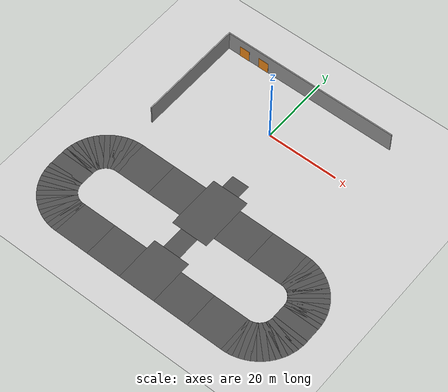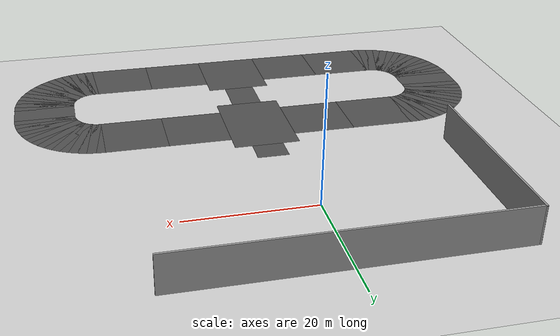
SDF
<sdf version="1.6">
 <world name="default">
  <include><uri>model://ground_plane</uri></include>
  <include><uri>model://sun</uri></include>
  <model name="wall_n">
   <static>true</static>
   <pose>0.0000 15.1500 3.0000 0.000000 0.000000 0.000000</pose>
   <link name="link">
    <collision name="c"><geometry><box><size>50.6000 0.3000 6.0000</size></box></geometry></collision>
    <visual name="v">
     <geometry><box><size>50.6000 0.3000 6.0000</size></box></geometry>
     <material>
      <script><uri>file://media/materials/scripts/gazebo.material</uri><name>Gazebo/Grey</name></script>
     </material>
    </visual>
   </link>
  </model>
  <model name="wall_w">
   <static>true</static>
   <pose>-25.1500 0.0000 3.0000 0.000000 0.000000 0.000000</pose>
   <link name="link">
    <collision name="c"><geometry><box><size>0.3000 30.6000 6.0000</size></box></geometry></collision>
    <visual name="v">
     <geometry><box><size>0.3000 30.6000 6.0000</size></box></geometry>
     <material>
      <script><uri>file://media/materials/scripts/gazebo.material</uri><name>Gazebo/Grey</name></script>
     </material>
    </visual>
   </link>
  </model>
  <model name="door_R1">
   <static>true</static>
   <pose>-20.0000 14.9700 1.7500 0.000000 0.000000 0.000000</pose>
   <link name="link">
    <visual name="v">
     <geometry><box><size>3.0000 0.0500 3.5000</size></box></geometry>
     <material>
      <script><uri>file://media/materials/scripts/gazebo.material</uri><name>Gazebo/Orange</name></script>
     </material>
    </visual>
   </link>
  </model>
  <model name="door_R2">
   <static>true</static>
   <pose>-14.0000 14.9700 1.7500 0.000000 0.000000 0.000000</pose>
   <link name="link">
    <visual name="v">
     <geometry><box><size>3.0000 0.0500 3.5000</size></box></geometry>
     <material>
      <script><uri>file://media/materials/scripts/gazebo.material</uri><name>Gazebo/Orange</name></script>
     </material>
    </visual>
   </link>
  </model>
  <model name="road_surface">
   <static>true</static>
   <link name="link">
    <visual name="v0">
     <pose>-17.2500 -27.0000 0.0010 0 0 0.000000</pose>
     <geometry><box><size>10.0000 10.0000 0.0020</size></box></geometry>
     <material>
      <script><uri>file://media/materials/scripts/gazebo.material</uri><name>Gazebo/DarkGrey</name></script>
     </material>
    </visual>
    <visual name="v1">
     <pose>-7.2500 -27.0000 0.0010 0 0 0.000000</pose>
     <geometry><box><size>10.0000 10.0000 0.0020</size></box></geometry>
     <material>
      <script><uri>file://media/materials/scripts/gazebo.material</uri><name>Gazebo/DarkGrey</name></script>
     </material>
    </visual>
    <visual name="v2">
     <pose>13.2500 -27.0000 0.0010 0 0 0.000000</pose>
     <geometry><box><size>10.0000 10.0000 0.0020</size></box></geometry>
     <material>
      <script><uri>file://media/materials/scripts/gazebo.material</uri><name>Gazebo/DarkGrey</name></script>
     </material>
    </visual>
    <visual name="v3">
     <pose>23.2500 -27.0000 0.0010 0 0 0.000000</pose>
     <geometry><box><size>10.0000 10.0000 0.0020</size></box></geometry>
     <material>
      <script><uri>file://media/materials/scripts/gazebo.material</uri><name>Gazebo/DarkGrey</name></script>
     </material>
    </visual>
    <visual name="v4">
     <pose>28.7210 -27.0123 0.0010 0 0 -0.052360</pose>
     <geometry><box><size>1.4674 10.0000 0.0020</size></box></geometry>
     <material>
      <script><uri>file://media/materials/scripts/gazebo.material</uri><name>Gazebo/DarkGrey</name></script>
     </material>
    </visual>
    <visual name="v5">
     <pose>29.6579 -27.1108 0.0010 0 0 -0.157080</pose>
     <geometry><box><size>1.4674 10.0000 0.0020</size></box></geometry>
     <material>
      <script><uri>file://media/materials/scripts/gazebo.material</uri><name>Gazebo/DarkGrey</name></script>
     </material>
    </visual>
    <visual name="v6">
     <pose>30.5794 -27.3067 0.0010 0 0 -0.261799</pose>
     <geometry><box><size>1.4674 10.0000 0.0020</size></box></geometry>
     <material>
      <script><uri>file://media/materials/scripts/gazebo.material</uri><name>Gazebo/DarkGrey</name></script>
     </material>
    </visual>
    <visual name="v7">
     <pose>31.4753 -27.5978 0.0010 0 0 -0.366519</pose>
     <geometry><box><size>1.4674 10.0000 0.0020</size></box></geometry>
     <material>
      <script><uri>file://media/materials/scripts/gazebo.material</uri><name>Gazebo/DarkGrey</name></script>
     </material>
    </visual>
    <visual name="v8">
     <pose>32.3359 -27.9809 0.0010 0 0 -0.471239</pose>
     <geometry><box><size>1.4674 10.0000 0.0020</size></box></geometry>
     <material>
      <script><uri>file://media/materials/scripts/gazebo.material</uri><name>Gazebo/DarkGrey</name></script>
     </material>
    </visual>
    <visual name="v9">
     <pose>33.1518 -28.4520 0.0010 0 0 -0.575959</pose>
     <geometry><box><size>1.4674 10.0000 0.0020</size></box></geometry>
     <material>
      <script><uri>file://media/materials/scripts/gazebo.material</uri><name>Gazebo/DarkGrey</name></script>
     </material>
    </visual>
    <visual name="v10">
     <pose>33.9139 -29.0057 0.0010 0 0 -0.680678</pose>
     <geometry><box><size>1.4674 10.0000 0.0020</size></box></geometry>
     <material>
      <script><uri>file://media/materials/scripts/gazebo.material</uri><name>Gazebo/DarkGrey</name></script>
     </material>
    </visual>
    <visual name="v11">
     <pose>34.6140 -29.6360 0.0010 0 0 -0.785398</pose>
     <geometry><box><size>1.4674 10.0000 0.0020</size></box></geometry>
     <material>
      <script><uri>file://media/materials/scripts/gazebo.material</uri><name>Gazebo/DarkGrey</name></script>
     </material>
    </visual>
    <visual name="v12">
     <pose>35.2443 -30.3361 0.0010 0 0 -0.890118</pose>
     <geometry><box><size>1.4674 10.0000 0.0020</size></box></geometry>
     <material>
      <script><uri>file://media/materials/scripts/gazebo.material</uri><name>Gazebo/DarkGrey</name></script>
     </material>
    </visual>
    <visual name="v13">
     <pose>35.7980 -31.0982 0.0010 0 0 -0.994838</pose>
     <geometry><box><size>1.4674 10.0000 0.0020</size></box></geometry>
     <material>
      <script><uri>file://media/materials/scripts/gazebo.material</uri><name>Gazebo/DarkGrey</name></script>
     </material>
    </visual>
    <visual name="v14">
     <pose>36.2691 -31.9141 0.0010 0 0 -1.099557</pose>
     <geometry><box><size>1.4674 10.0000 0.0020</size></box></geometry>
     <material>
      <script><uri>file://media/materials/scripts/gazebo.material</uri><name>Gazebo/DarkGrey</name></script>
     </material>
    </visual>
    <visual name="v15">
     <pose>36.6522 -32.7747 0.0010 0 0 -1.204277</pose>
     <geometry><box><size>1.4674 10.0000 0.0020</size></box></geometry>
     <material>
      <script><uri>file://media/materials/scripts/gazebo.material</uri><name>Gazebo/DarkGrey</name></script>
     </material>
    </visual>
    <visual name="v16">
     <pose>36.9433 -33.6706 0.0010 0 0 -1.308997</pose>
     <geometry><box><size>1.4674 10.0000 0.0020</size></box></geometry>
     <material>
      <script><uri>file://media/materials/scripts/gazebo.material</uri><name>Gazebo/DarkGrey</name></script>
     </material>
    </visual>
    <visual name="v17">
     <pose>37.1392 -34.5921 0.0010 0 0 -1.413717</pose>
     <geometry><box><size>1.4674 10.0000 0.0020</size></box></geometry>
     <material>
      <script><uri>file://media/materials/scripts/gazebo.material</uri><name>Gazebo/DarkGrey</name></script>
     </material>
    </visual>
    <visual name="v18">
     <pose>37.2377 -35.5290 0.0010 0 0 -1.518436</pose>
     <geometry><box><size>1.4674 10.0000 0.0020</size></box></geometry>
     <material>
      <script><uri>file://media/materials/scripts/gazebo.material</uri><name>Gazebo/DarkGrey</name></script>
     </material>
    </visual>
    <visual name="v19">
     <pose>37.2500 -38.0000 0.0010 0 0 -1.570796</pose>
     <geometry><box><size>4.0000 10.0000 0.0020</size></box></geometry>
     <material>
      <script><uri>file://media/materials/scripts/gazebo.material</uri><name>Gazebo/DarkGrey</name></script>
     </material>
    </visual>
    <visual name="v20">
     <pose>37.2377 -40.4710 0.0010 0 0 -1.623156</pose>
     <geometry><box><size>1.4674 10.0000 0.0020</size></box></geometry>
     <material>
      <script><uri>file://media/materials/scripts/gazebo.material</uri><name>Gazebo/DarkGrey</name></script>
     </material>
    </visual>
    <visual name="v21">
     <pose>37.1392 -41.4079 0.0010 0 0 -1.727876</pose>
     <geometry><box><size>1.4674 10.0000 0.0020</size></box></geometry>
     <material>
      <script><uri>file://media/materials/scripts/gazebo.material</uri><name>Gazebo/DarkGrey</name></script>
     </material>
    </visual>
    <visual name="v22">
     <pose>36.9433 -42.3294 0.0010 0 0 -1.832596</pose>
     <geometry><box><size>1.4674 10.0000 0.0020</size></box></geometry>
     <material>
      <script><uri>file://media/materials/scripts/gazebo.material</uri><name>Gazebo/DarkGrey</name></script>
     </material>
    </visual>
    <visual name="v23">
     <pose>36.6522 -43.2253 0.0010 0 0 -1.937315</pose>
     <geometry><box><size>1.4674 10.0000 0.0020</size></box></geometry>
     <material>
      <script><uri>file://media/materials/scripts/gazebo.material</uri><name>Gazebo/DarkGrey</name></script>
     </material>
    </visual>
    <visual name="v24">
     <pose>36.2691 -44.0859 0.0010 0 0 -2.042035</pose>
     <geometry><box><size>1.4674 10.0000 0.0020</size></box></geometry>
     <material>
      <script><uri>file://media/materials/scripts/gazebo.material</uri><name>Gazebo/DarkGrey</name></script>
     </material>
    </visual>
    <visual name="v25">
     <pose>35.7980 -44.9018 0.0010 0 0 -2.146755</pose>
     <geometry><box><size>1.4674 10.0000 0.0020</size></box></geometry>
     <material>
      <script><uri>file://media/materials/scripts/gazebo.material</uri><name>Gazebo/DarkGrey</name></script>
     </material>
    </visual>
    <visual name="v26">
     <pose>35.2443 -45.6639 0.0010 0 0 -2.251475</pose>
     <geometry><box><size>1.4674 10.0000 0.0020</size></box></geometry>
     <material>
      <script><uri>file://media/materials/scripts/gazebo.material</uri><name>Gazebo/DarkGrey</name></script>
     </material>
    </visual>
    <visual name="v27">
     <pose>34.6140 -46.3640 0.0010 0 0 -2.356194</pose>
     <geometry><box><size>1.4674 10.0000 0.0020</size></box></geometry>
     <material>
      <script><uri>file://media/materials/scripts/gazebo.material</uri><name>Gazebo/DarkGrey</name></script>
     </material>
    </visual>
    <visual name="v28">
     <pose>33.9139 -46.9943 0.0010 0 0 -2.460914</pose>
     <geometry><box><size>1.4674 10.0000 0.0020</size></box></geometry>
     <material>
      <script><uri>file://media/materials/scripts/gazebo.material</uri><name>Gazebo/DarkGrey</name></script>
     </material>
    </visual>
    <visual name="v29">
     <pose>33.1518 -47.5480 0.0010 0 0 -2.565634</pose>
     <geometry><box><size>1.4674 10.0000 0.0020</size></box></geometry>
     <material>
      <script><uri>file://media/materials/scripts/gazebo.material</uri><name>Gazebo/DarkGrey</name></script>
     </material>
    </visual>
    <visual name="v30">
     <pose>32.3359 -48.0191 0.0010 0 0 -2.670354</pose>
     <geometry><box><size>1.4674 10.0000 0.0020</size></box></geometry>
     <material>
      <script><uri>file://media/materials/scripts/gazebo.material</uri><name>Gazebo/DarkGrey</name></script>
     </material>
    </visual>
    <visual name="v31">
     <pose>31.4753 -48.4022 0.0010 0 0 -2.775074</pose>
     <geometry><box><size>1.4674 10.0000 0.0020</size></box></geometry>
     <material>
      <script><uri>file://media/materials/scripts/gazebo.material</uri><name>Gazebo/DarkGrey</name></script>
     </material>
    </visual>
    <visual name="v32">
     <pose>30.5794 -48.6933 0.0010 0 0 -2.879793</pose>
     <geometry><box><size>1.4674 10.0000 0.0020</size></box></geometry>
     <material>
      <script><uri>file://media/materials/scripts/gazebo.material</uri><name>Gazebo/DarkGrey</name></script>
     </material>
    </visual>
    <visual name="v33">
     <pose>29.6579 -48.8892 0.0010 0 0 -2.984513</pose>
     <geometry><box><size>1.4674 10.0000 0.0020</size></box></geometry>
     <material>
      <script><uri>file://media/materials/scripts/gazebo.material</uri><name>Gazebo/DarkGrey</name></script>
     </material>
    </visual>
    <visual name="v34">
     <pose>28.7210 -48.9877 0.0010 0 0 -3.089233</pose>
     <geometry><box><size>1.4674 10.0000 0.0020</size></box></geometry>
     <material>
      <script><uri>file://media/materials/scripts/gazebo.material</uri><name>Gazebo/DarkGrey</name></script>
     </material>
    </visual>
    <visual name="v35">
     <pose>23.2500 -49.0000 0.0010 0 0 3.141593</pose>
     <geometry><box><size>10.0000 10.0000 0.0020</size></box></geometry>
     <material>
      <script><uri>file://media/materials/scripts/gazebo.material</uri><name>Gazebo/DarkGrey</name></script>
     </material>
    </visual>
    <visual name="v36">
     <pose>13.2500 -49.0000 0.0010 0 0 3.141593</pose>
     <geometry><box><size>10.0000 10.0000 0.0020</size></box></geometry>
     <material>
      <script><uri>file://media/materials/scripts/gazebo.material</uri><name>Gazebo/DarkGrey</name></script>
     </material>
    </visual>
    <visual name="v37">
     <pose>-7.2500 -49.0000 0.0010 0 0 3.141593</pose>
     <geometry><box><size>10.0000 10.0000 0.0020</size></box></geometry>
     <material>
      <script><uri>file://media/materials/scripts/gazebo.material</uri><name>Gazebo/DarkGrey</name></script>
     </material>
    </visual>
    <visual name="v38">
     <pose>-17.2500 -49.0000 0.0010 0 0 3.141593</pose>
     <geometry><box><size>10.0000 10.0000 0.0020</size></box></geometry>
     <material>
      <script><uri>file://media/materials/scripts/gazebo.material</uri><name>Gazebo/DarkGrey</name></script>
     </material>
    </visual>
    <visual name="v39">
     <pose>-22.7210 -48.9877 0.0010 0 0 -3.193953</pose>
     <geometry><box><size>1.4674 10.0000 0.0020</size></box></geometry>
     <material>
      <script><uri>file://media/materials/scripts/gazebo.material</uri><name>Gazebo/DarkGrey</name></script>
     </material>
    </visual>
    <visual name="v40">
     <pose>-23.6579 -48.8892 0.0010 0 0 -3.298672</pose>
     <geometry><box><size>1.4674 10.0000 0.0020</size></box></geometry>
     <material>
      <script><uri>file://media/materials/scripts/gazebo.material</uri><name>Gazebo/DarkGrey</name></script>
     </material>
    </visual>
    <visual name="v41">
     <pose>-24.5794 -48.6933 0.0010 0 0 -3.403392</pose>
     <geometry><box><size>1.4674 10.0000 0.0020</size></box></geometry>
     <material>
      <script><uri>file://media/materials/scripts/gazebo.material</uri><name>Gazebo/DarkGrey</name></script>
     </material>
    </visual>
    <visual name="v42">
     <pose>-25.4753 -48.4022 0.0010 0 0 -3.508112</pose>
     <geometry><box><size>1.4674 10.0000 0.0020</size></box></geometry>
     <material>
      <script><uri>file://media/materials/scripts/gazebo.material</uri><name>Gazebo/DarkGrey</name></script>
     </material>
    </visual>
    <visual name="v43">
     <pose>-26.3359 -48.0191 0.0010 0 0 -3.612832</pose>
     <geometry><box><size>1.4674 10.0000 0.0020</size></box></geometry>
     <material>
      <script><uri>file://media/materials/scripts/gazebo.material</uri><name>Gazebo/DarkGrey</name></script>
     </material>
    </visual>
    <visual name="v44">
     <pose>-27.1518 -47.5480 0.0010 0 0 -3.717551</pose>
     <geometry><box><size>1.4674 10.0000 0.0020</size></box></geometry>
     <material>
      <script><uri>file://media/materials/scripts/gazebo.material</uri><name>Gazebo/DarkGrey</name></script>
     </material>
    </visual>
    <visual name="v45">
     <pose>-27.9139 -46.9943 0.0010 0 0 -3.822271</pose>
     <geometry><box><size>1.4674 10.0000 0.0020</size></box></geometry>
     <material>
      <script><uri>file://media/materials/scripts/gazebo.material</uri><name>Gazebo/DarkGrey</name></script>
     </material>
    </visual>
    <visual name="v46">
     <pose>-28.6140 -46.3640 0.0010 0 0 -3.926991</pose>
     <geometry><box><size>1.4674 10.0000 0.0020</size></box></geometry>
     <material>
      <script><uri>file://media/materials/scripts/gazebo.material</uri><name>Gazebo/DarkGrey</name></script>
     </material>
    </visual>
    <visual name="v47">
     <pose>-29.2443 -45.6639 0.0010 0 0 -4.031711</pose>
     <geometry><box><size>1.4674 10.0000 0.0020</size></box></geometry>
     <material>
      <script><uri>file://media/materials/scripts/gazebo.material</uri><name>Gazebo/DarkGrey</name></script>
     </material>
    </visual>
    <visual name="v48">
     <pose>-29.7980 -44.9018 0.0010 0 0 -4.136430</pose>
     <geometry><box><size>1.4674 10.0000 0.0020</size></box></geometry>
     <material>
      <script><uri>file://media/materials/scripts/gazebo.material</uri><name>Gazebo/DarkGrey</name></script>
     </material>
    </visual>
    <visual name="v49">
     <pose>-30.2691 -44.0859 0.0010 0 0 -4.241150</pose>
     <geometry><box><size>1.4674 10.0000 0.0020</size></box></geometry>
     <material>
      <script><uri>file://media/materials/scripts/gazebo.material</uri><name>Gazebo/DarkGrey</name></script>
     </material>
    </visual>
    <visual name="v50">
     <pose>-30.6522 -43.2253 0.0010 0 0 -4.345870</pose>
     <geometry><box><size>1.4674 10.0000 0.0020</size></box></geometry>
     <material>
      <script><uri>file://media/materials/scripts/gazebo.material</uri><name>Gazebo/DarkGrey</name></script>
     </material>
    </visual>
    <visual name="v51">
     <pose>-30.9433 -42.3294 0.0010 0 0 -4.450590</pose>
     <geometry><box><size>1.4674 10.0000 0.0020</size></box></geometry>
     <material>
      <script><uri>file://media/materials/scripts/gazebo.material</uri><name>Gazebo/DarkGrey</name></script>
     </material>
    </visual>
    <visual name="v52">
     <pose>-31.1392 -41.4079 0.0010 0 0 -4.555309</pose>
     <geometry><box><size>1.4674 10.0000 0.0020</size></box></geometry>
     <material>
      <script><uri>file://media/materials/scripts/gazebo.material</uri><name>Gazebo/DarkGrey</name></script>
     </material>
    </visual>
    <visual name="v53">
     <pose>-31.2377 -40.4710 0.0010 0 0 -4.660029</pose>
     <geometry><box><size>1.4674 10.0000 0.0020</size></box></geometry>
     <material>
      <script><uri>file://media/materials/scripts/gazebo.material</uri><name>Gazebo/DarkGrey</name></script>
     </material>
    </visual>
    <visual name="v54">
     <pose>-31.2500 -38.0000 0.0010 0 0 1.570796</pose>
     <geometry><box><size>4.0000 10.0000 0.0020</size></box></geometry>
     <material>
      <script><uri>file://media/materials/scripts/gazebo.material</uri><name>Gazebo/DarkGrey</name></script>
     </material>
    </visual>
    <visual name="v55">
     <pose>-31.2377 -35.5290 0.0010 0 0 1.518436</pose>
     <geometry><box><size>1.4674 10.0000 0.0020</size></box></geometry>
     <material>
      <script><uri>file://media/materials/scripts/gazebo.material</uri><name>Gazebo/DarkGrey</name></script>
     </material>
    </visual>
    <visual name="v56">
     <pose>-31.1392 -34.5921 0.0010 0 0 1.413717</pose>
     <geometry><box><size>1.4674 10.0000 0.0020</size></box></geometry>
     <material>
      <script><uri>file://media/materials/scripts/gazebo.material</uri><name>Gazebo/DarkGrey</name></script>
     </material>
    </visual>
    <visual name="v57">
     <pose>-30.9433 -33.6706 0.0010 0 0 1.308997</pose>
     <geometry><box><size>1.4674 10.0000 0.0020</size></box></geometry>
     <material>
      <script><uri>file://media/materials/scripts/gazebo.material</uri><name>Gazebo/DarkGrey</name></script>
     </material>
    </visual>
    <visual name="v58">
     <pose>-30.6522 -32.7747 0.0010 0 0 1.204277</pose>
     <geometry><box><size>1.4674 10.0000 0.0020</size></box></geometry>
     <material>
      <script><uri>file://media/materials/scripts/gazebo.material</uri><name>Gazebo/DarkGrey</name></script>
     </material>
    </visual>
    <visual name="v59">
     <pose>-30.2691 -31.9141 0.0010 0 0 1.099557</pose>
     <geometry><box><size>1.4674 10.0000 0.0020</size></box></geometry>
     <material>
      <script><uri>file://media/materials/scripts/gazebo.material</uri><name>Gazebo/DarkGrey</name></script>
     </material>
    </visual>
    <visual name="v60">
     <pose>-29.7980 -31.0982 0.0010 0 0 0.994838</pose>
     <geometry><box><size>1.4674 10.0000 0.0020</size></box></geometry>
     <material>
      <script><uri>file://media/materials/scripts/gazebo.material</uri><name>Gazebo/DarkGrey</name></script>
     </material>
    </visual>
    <visual name="v61">
     <pose>-29.2443 -30.3361 0.0010 0 0 0.890118</pose>
     <geometry><box><size>1.4674 10.0000 0.0020</size></box></geometry>
     <material>
      <script><uri>file://media/materials/scripts/gazebo.material</uri><name>Gazebo/DarkGrey</name></script>
     </material>
    </visual>
    <visual name="v62">
     <pose>-28.6140 -29.6360 0.0010 0 0 0.785398</pose>
     <geometry><box><size>1.4674 10.0000 0.0020</size></box></geometry>
     <material>
      <script><uri>file://media/materials/scripts/gazebo.material</uri><name>Gazebo/DarkGrey</name></script>
     </material>
    </visual>
    <visual name="v63">
     <pose>-27.9139 -29.0057 0.0010 0 0 0.680678</pose>
     <geometry><box><size>1.4674 10.0000 0.0020</size></box></geometry>
     <material>
      <script><uri>file://media/materials/scripts/gazebo.material</uri><name>Gazebo/DarkGrey</name></script>
     </material>
    </visual>
    <visual name="v64">
     <pose>-27.1518 -28.4520 0.0010 0 0 0.575959</pose>
     <geometry><box><size>1.4674 10.0000 0.0020</size></box></geometry>
     <material>
      <script><uri>file://media/materials/scripts/gazebo.material</uri><name>Gazebo/DarkGrey</name></script>
     </material>
    </visual>
    <visual name="v65">
     <pose>-26.3359 -27.9809 0.0010 0 0 0.471239</pose>
     <geometry><box><size>1.4674 10.0000 0.0020</size></box></geometry>
     <material>
      <script><uri>file://media/materials/scripts/gazebo.material</uri><name>Gazebo/DarkGrey</name></script>
     </material>
    </visual>
    <visual name="v66">
     <pose>-25.4753 -27.5978 0.0010 0 0 0.366519</pose>
     <geometry><box><size>1.4674 10.0000 0.0020</size></box></geometry>
     <material>
      <script><uri>file://media/materials/scripts/gazebo.material</uri><name>Gazebo/DarkGrey</name></script>
     </material>
    </visual>
    <visual name="v67">
     <pose>-24.5794 -27.3067 0.0010 0 0 0.261799</pose>
     <geometry><box><size>1.4674 10.0000 0.0020</size></box></geometry>
     <material>
      <script><uri>file://media/materials/scripts/gazebo.material</uri><name>Gazebo/DarkGrey</name></script>
     </material>
    </visual>
    <visual name="v68">
     <pose>-23.6579 -27.1108 0.0010 0 0 0.157080</pose>
     <geometry><box><size>1.4674 10.0000 0.0020</size></box></geometry>
     <material>
      <script><uri>file://media/materials/scripts/gazebo.material</uri><name>Gazebo/DarkGrey</name></script>
     </material>
    </visual>
    <visual name="v69">
     <pose>-22.7210 -27.0123 0.0010 0 0 0.052360</pose>
     <geometry><box><size>1.4674 10.0000 0.0020</size></box></geometry>
     <material>
      <script><uri>file://media/materials/scripts/gazebo.material</uri><name>Gazebo/DarkGrey</name></script>
     </material>
    </visual>
    <visual name="v70">
     <pose>3.0000 -17.2750 0.0010 0 0 -1.570796</pose>
     <geometry><box><size>3.9500 5.0000 0.0020</size></box></geometry>
     <material>
      <script><uri>file://media/materials/scripts/gazebo.material</uri><name>Gazebo/DarkGrey</name></script>
     </material>
    </visual>
    <visual name="v71">
     <pose>3.0000 -38.0000 0.0010 0 0 -1.570796</pose>
     <geometry><box><size>6.5000 5.0000 0.0020</size></box></geometry>
     <material>
      <script><uri>file://media/materials/scripts/gazebo.material</uri><name>Gazebo/DarkGrey</name></script>
     </material>
    </visual>
    <visual name="v72">
     <pose>3.0000 -27.0000 0.0010 0 0 0.000000</pose>
     <geometry><box><size>10.5000 15.5000 0.0020</size></box></geometry>
     <material>
      <script><uri>file://media/materials/scripts/gazebo.material</uri><name>Gazebo/DarkGrey</name></script>
     </material>
    </visual>
    <visual name="v73">
     <pose>3.0000 -47.6250 0.0010 0 0 0.000000</pose>
     <geometry><box><size>10.5000 12.7500 0.0020</size></box></geometry>
     <material>
      <script><uri>file://media/materials/scripts/gazebo.material</uri><name>Gazebo/DarkGrey</name></script>
     </material>
    </visual>
   </link>
  </model>
 </world>
</sdf>
